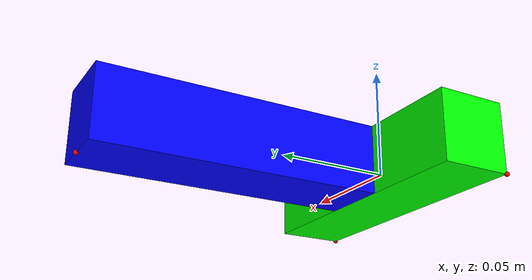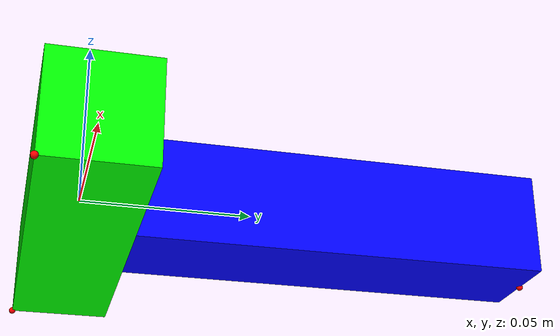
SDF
<?xml version="1.0"?>
<sdf version="1.7">
  <model name="t_shape">
    <link name="horizontal_link">
      <inertial>
        <pose>0 0 0 0 0 0</pose>
        <mass>0.5</mass>
        <!-- Inertia values were calculated to be consistent with the mass and
             geometry size, assuming a uniform density. -->
        <inertia>
            <ixx>0.000075</ixx>
            <iyy>0.0006375</iyy>
            <izz>0.0006375</izz>
            <ixy>0.0</ixy>
            <ixz>0.0</ixz>
            <iyz>0.0</iyz>
        </inertia>
      </inertial>

      <visual name="horizontal_link">
        <geometry>
          <box>
            <size>0.12 0.03 0.03</size>
          </box>
        </geometry>
        <material>
          <diffuse>0 1 0 1</diffuse>
        </material>
      </visual>
      <collision name="horizontal_link_volume">
            <geometry>
          <box>
            <size>0.12 0.03 0.03</size>
          </box>
        </geometry>
        <drake:proximity_properties>
        <drake:mu_dynamic>0.3</drake:mu_dynamic>
        </drake:proximity_properties>
      </collision>
    </link>

    <link name="vertical_link">
      <inertial>
        <pose>0 0.075 0 0 0 1.5708</pose>
        <mass>0.5</mass>
        <!-- Inertia values were calculated to be consistent with the mass and
             geometry size, assuming a uniform density. -->
        <inertia>
            <ixx>0.000075</ixx>
            <iyy>0.0006375</iyy>
            <izz>0.0006375</izz>
            <ixy>0.0</ixy>
            <ixz>0.0</ixz>
            <iyz>0.0</iyz>
        </inertia>
      </inertial>

      <visual name="vertical_link">
        <pose>0 0.075 0 0 0 1.5708</pose>
        <geometry>
          <box>
            <size>0.12 0.03 0.03</size>
          </box>
        </geometry>
        <material>
          <diffuse>0 0 1 1</diffuse>
        </material>
      </visual>
      <collision name="vertical_link_volume">
        <pose>0 0.075 0 0 0 1.5708</pose>
            <geometry>
          <box>
            <size>0.12 0.03 0.03</size>
          </box>
        </geometry>
        <drake:proximity_properties>
        <drake:mu_dynamic>0.3</drake:mu_dynamic>
        </drake:proximity_properties>
      </collision>
    </link>

    <link name="corner_xnynz">
      <inertial>
        <pose>0 0 0 0 0 0</pose>
        <mass>0</mass>
        <inertia>
          <ixx>0.</ixx>
          <ixy>0</ixy>
          <ixz>0</ixz>
          <iyy>0.</iyy>
          <iyz>0</iyz>
          <izz>0.</izz>
        </inertia>
      </inertial>
    <collision name="corner_xnynz_">
        <geometry>
          <sphere>
            <radius>0.001</radius>
          </sphere>
        </geometry>
        <drake:proximity_properties>
        <drake:mu_dynamic>0.3</drake:mu_dynamic>
        </drake:proximity_properties>
        <pose> 0.06 -0.015 -0.015 0 0 0</pose>
      </collision>
    <visual name="corner_xnynz">
        <geometry>
          <sphere>
            <radius>0.001</radius>
          </sphere>
        </geometry>
        <material>
        <diffuse>1 0 0 1</diffuse>
        </material>
        <pose> 0.06 -0.015 -0.015 0 0 0</pose>
      </visual>
    </link>

    <link name="corner_nxnynz">
      <inertial>
        <pose>0 0 0 0 0 0</pose>
        <mass>0</mass>
        <inertia>
          <ixx>0.</ixx>
          <ixy>0</ixy>
          <ixz>0</ixz>
          <iyy>0.</iyy>
          <iyz>0</iyz>
          <izz>0.</izz>
        </inertia>
      </inertial>
    <collision name="corner_nxnynz">
        <geometry>
          <sphere>
            <radius>0.001</radius>
          </sphere>
        </geometry>
        <drake:proximity_properties>
        <drake:mu_dynamic>0.3</drake:mu_dynamic>
        </drake:proximity_properties>
        <pose> -0.06 -0.015 -0.015 0 0 0</pose>
      </collision>
    <visual name="corner_nxnynz">
        <geometry>
          <sphere>
            <radius>0.001</radius>
          </sphere>
        </geometry>
        <material>
        <diffuse>1 0 0 1</diffuse>
        </material>
        <pose> -0.06 -0.015 -0.015 0 0 0</pose>
      </visual>
    </link>

    <link name="corner_xynz">
      <inertial>
        <pose>0 0 0 0 0 0</pose>
        <mass>0</mass>
        <inertia>
          <ixx>0.</ixx>
          <ixy>0</ixy>
          <ixz>0</ixz>
          <iyy>0.</iyy>
          <iyz>0</iyz>
          <izz>0.</izz>
        </inertia>
      </inertial>
    <collision name="corner_xynz">
        <geometry>
          <sphere>
            <radius>0.001</radius>
          </sphere>
        </geometry>
        <drake:proximity_properties>
        <drake:mu_dynamic>0.3</drake:mu_dynamic>
        </drake:proximity_properties>
        <pose> 0.0 0.135 -0.015 0 0 0</pose>
      </collision>
    <visual name="corner_xynz">
        <geometry>
          <sphere>
            <radius>0.001</radius>
          </sphere>
        </geometry>
        <material>
        <diffuse>1 0 0 1</diffuse>
        </material>
        <pose> 0.0 0.135 -0.015 0 0 0</pose>
      </visual>
    </link>

    <joint name="fixed_joint" type="fixed">
      <!-- Parent and child links for the joint -->
      <parent>horizontal_link</parent>
      <child>vertical_link</child>
      <!-- Pose of the joint relative to the parent link -->
      <pose>0 0 0 0 0 0</pose>
    </joint>

    <joint name="corner_xnynz_joint" type="fixed">
      <!-- Parent and child links for the joint -->
      <parent>horizontal_link</parent>
      <child>corner_xnynz</child>
      <!-- Pose of the joint relative to the parent link -->
      <pose>0 0 0 0 0 0</pose>
    </joint>

    <joint name="corner_nxnynz_joint" type="fixed">
      <!-- Parent and child links for the joint -->
      <parent>horizontal_link</parent>
      <child>corner_nxnynz</child>
      <!-- Pose of the joint relative to the parent link -->
      <pose>0 0 0 0 0 0</pose>
    </joint>

    <joint name="corner_xynz_joint" type="fixed">
      <!-- Parent and child links for the joint -->
      <parent>vertical_link</parent>
      <child>corner_xynz</child>
      <!-- Pose of the joint relative to the parent link -->
      <pose>0 0 0 0 0 0</pose>
    </joint>

  </model>
</sdf>
